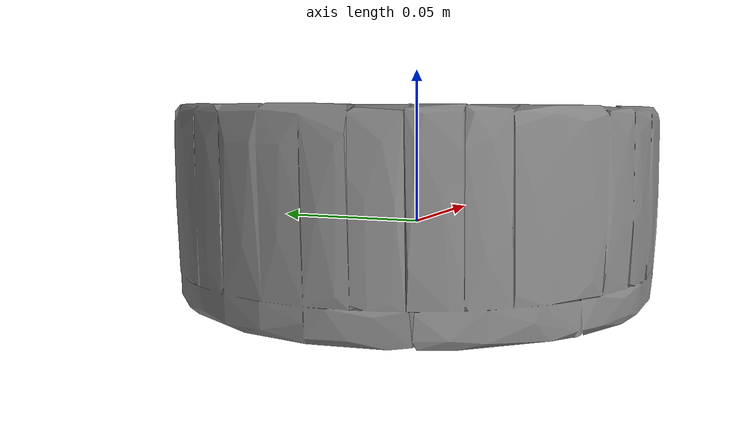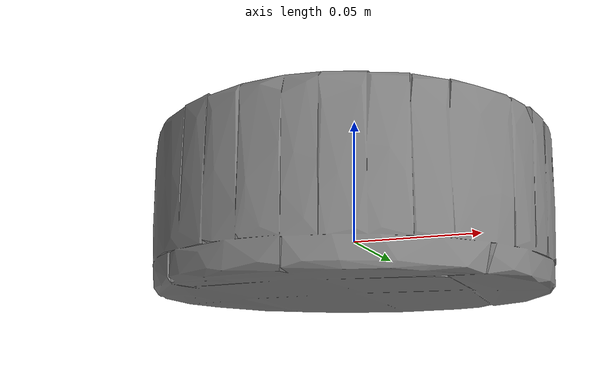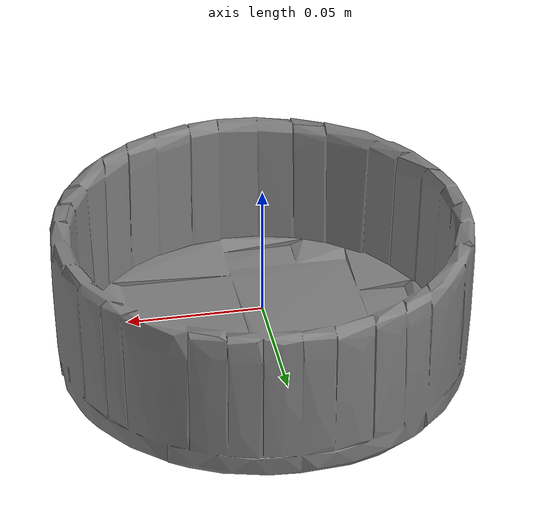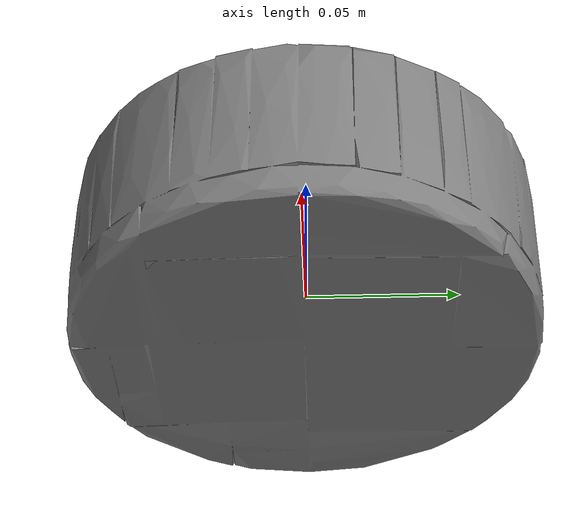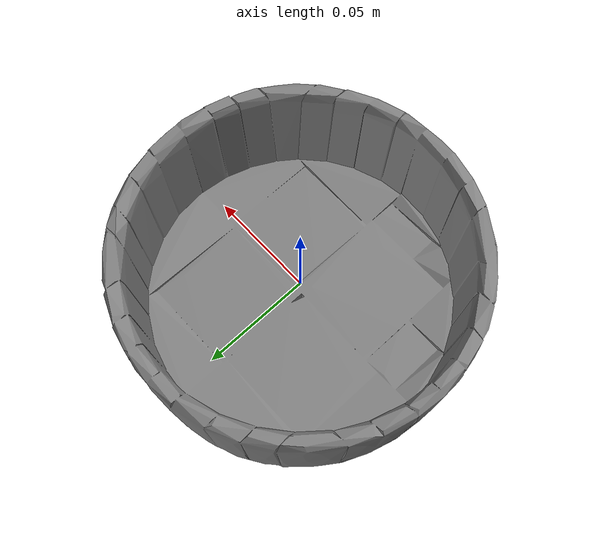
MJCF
<mujoco model="dog_bowl_Top_Paw_Dog_Bowl_Blue_Paw_Bone_Ceramic_25_fl_oz_total_M">
  <default>
    <default class="visual">
      <geom group="2" type="mesh" contype="0" conaffinity="0" />
    </default>
    <default class="collision">
      <geom group="3" type="mesh" />
    </default>
  </default>
  <asset>
    <mesh file="dog_bowl_Top_Paw_Dog_Bowl_Blue_Paw_Bone_Ceramic_25_fl_oz_total_M.stl" />
    <mesh file="dog_bowl_Top_Paw_Dog_Bowl_Blue_Paw_Bone_Ceramic_25_fl_oz_total_M_collision_0.stl" />
    <mesh file="dog_bowl_Top_Paw_Dog_Bowl_Blue_Paw_Bone_Ceramic_25_fl_oz_total_M_collision_1.stl" />
    <mesh file="dog_bowl_Top_Paw_Dog_Bowl_Blue_Paw_Bone_Ceramic_25_fl_oz_total_M_collision_2.stl" />
    <mesh file="dog_bowl_Top_Paw_Dog_Bowl_Blue_Paw_Bone_Ceramic_25_fl_oz_total_M_collision_3.stl" />
    <mesh file="dog_bowl_Top_Paw_Dog_Bowl_Blue_Paw_Bone_Ceramic_25_fl_oz_total_M_collision_4.stl" />
    <mesh file="dog_bowl_Top_Paw_Dog_Bowl_Blue_Paw_Bone_Ceramic_25_fl_oz_total_M_collision_5.stl" />
    <mesh file="dog_bowl_Top_Paw_Dog_Bowl_Blue_Paw_Bone_Ceramic_25_fl_oz_total_M_collision_6.stl" />
    <mesh file="dog_bowl_Top_Paw_Dog_Bowl_Blue_Paw_Bone_Ceramic_25_fl_oz_total_M_collision_7.stl" />
    <mesh file="dog_bowl_Top_Paw_Dog_Bowl_Blue_Paw_Bone_Ceramic_25_fl_oz_total_M_collision_8.stl" />
    <mesh file="dog_bowl_Top_Paw_Dog_Bowl_Blue_Paw_Bone_Ceramic_25_fl_oz_total_M_collision_9.stl" />
    <mesh file="dog_bowl_Top_Paw_Dog_Bowl_Blue_Paw_Bone_Ceramic_25_fl_oz_total_M_collision_10.stl" />
    <mesh file="dog_bowl_Top_Paw_Dog_Bowl_Blue_Paw_Bone_Ceramic_25_fl_oz_total_M_collision_11.stl" />
    <mesh file="dog_bowl_Top_Paw_Dog_Bowl_Blue_Paw_Bone_Ceramic_25_fl_oz_total_M_collision_12.stl" />
    <mesh file="dog_bowl_Top_Paw_Dog_Bowl_Blue_Paw_Bone_Ceramic_25_fl_oz_total_M_collision_13.stl" />
    <mesh file="dog_bowl_Top_Paw_Dog_Bowl_Blue_Paw_Bone_Ceramic_25_fl_oz_total_M_collision_14.stl" />
    <mesh file="dog_bowl_Top_Paw_Dog_Bowl_Blue_Paw_Bone_Ceramic_25_fl_oz_total_M_collision_15.stl" />
  </asset>
  <worldbody>
    <body name="dog_bowl_Top_Paw_Dog_Bowl_Blue_Paw_Bone_Ceramic_25_fl_oz_total_M">
      <geom mesh="dog_bowl_Top_Paw_Dog_Bowl_Blue_Paw_Bone_Ceramic_25_fl_oz_total_M" class="visual" />
      <geom mesh="dog_bowl_Top_Paw_Dog_Bowl_Blue_Paw_Bone_Ceramic_25_fl_oz_total_M_collision_0" class="collision" />
      <geom mesh="dog_bowl_Top_Paw_Dog_Bowl_Blue_Paw_Bone_Ceramic_25_fl_oz_total_M_collision_1" class="collision" />
      <geom mesh="dog_bowl_Top_Paw_Dog_Bowl_Blue_Paw_Bone_Ceramic_25_fl_oz_total_M_collision_2" class="collision" />
      <geom mesh="dog_bowl_Top_Paw_Dog_Bowl_Blue_Paw_Bone_Ceramic_25_fl_oz_total_M_collision_3" class="collision" />
      <geom mesh="dog_bowl_Top_Paw_Dog_Bowl_Blue_Paw_Bone_Ceramic_25_fl_oz_total_M_collision_4" class="collision" />
      <geom mesh="dog_bowl_Top_Paw_Dog_Bowl_Blue_Paw_Bone_Ceramic_25_fl_oz_total_M_collision_5" class="collision" />
      <geom mesh="dog_bowl_Top_Paw_Dog_Bowl_Blue_Paw_Bone_Ceramic_25_fl_oz_total_M_collision_6" class="collision" />
      <geom mesh="dog_bowl_Top_Paw_Dog_Bowl_Blue_Paw_Bone_Ceramic_25_fl_oz_total_M_collision_7" class="collision" />
      <geom mesh="dog_bowl_Top_Paw_Dog_Bowl_Blue_Paw_Bone_Ceramic_25_fl_oz_total_M_collision_8" class="collision" />
      <geom mesh="dog_bowl_Top_Paw_Dog_Bowl_Blue_Paw_Bone_Ceramic_25_fl_oz_total_M_collision_9" class="collision" />
      <geom mesh="dog_bowl_Top_Paw_Dog_Bowl_Blue_Paw_Bone_Ceramic_25_fl_oz_total_M_collision_10" class="collision" />
      <geom mesh="dog_bowl_Top_Paw_Dog_Bowl_Blue_Paw_Bone_Ceramic_25_fl_oz_total_M_collision_11" class="collision" />
      <geom mesh="dog_bowl_Top_Paw_Dog_Bowl_Blue_Paw_Bone_Ceramic_25_fl_oz_total_M_collision_12" class="collision" />
      <geom mesh="dog_bowl_Top_Paw_Dog_Bowl_Blue_Paw_Bone_Ceramic_25_fl_oz_total_M_collision_13" class="collision" />
      <geom mesh="dog_bowl_Top_Paw_Dog_Bowl_Blue_Paw_Bone_Ceramic_25_fl_oz_total_M_collision_14" class="collision" />
      <geom mesh="dog_bowl_Top_Paw_Dog_Bowl_Blue_Paw_Bone_Ceramic_25_fl_oz_total_M_collision_15" class="collision" />
    </body>
  </worldbody>
</mujoco>
